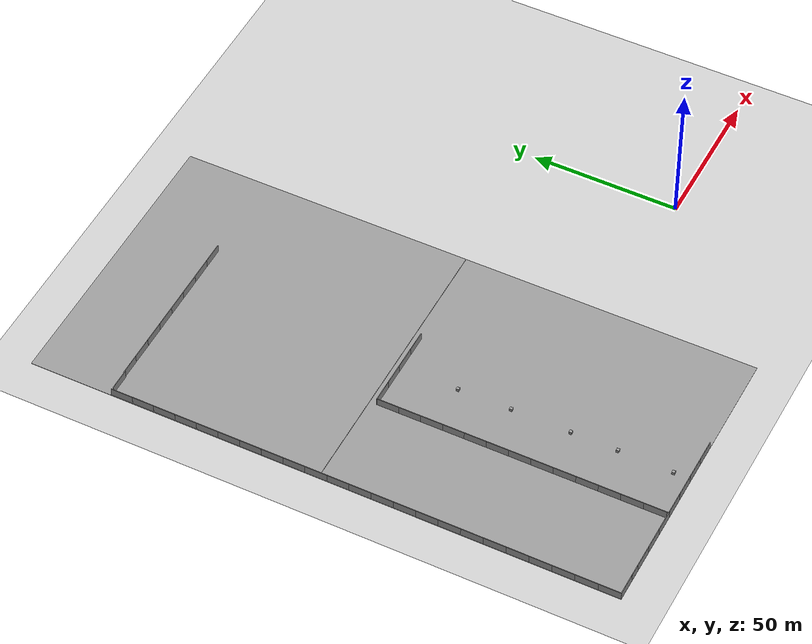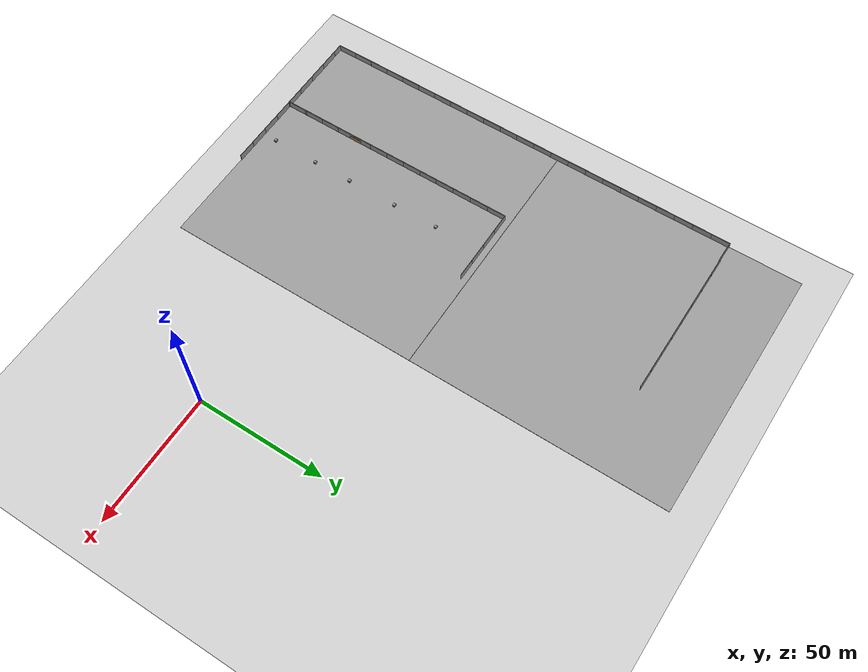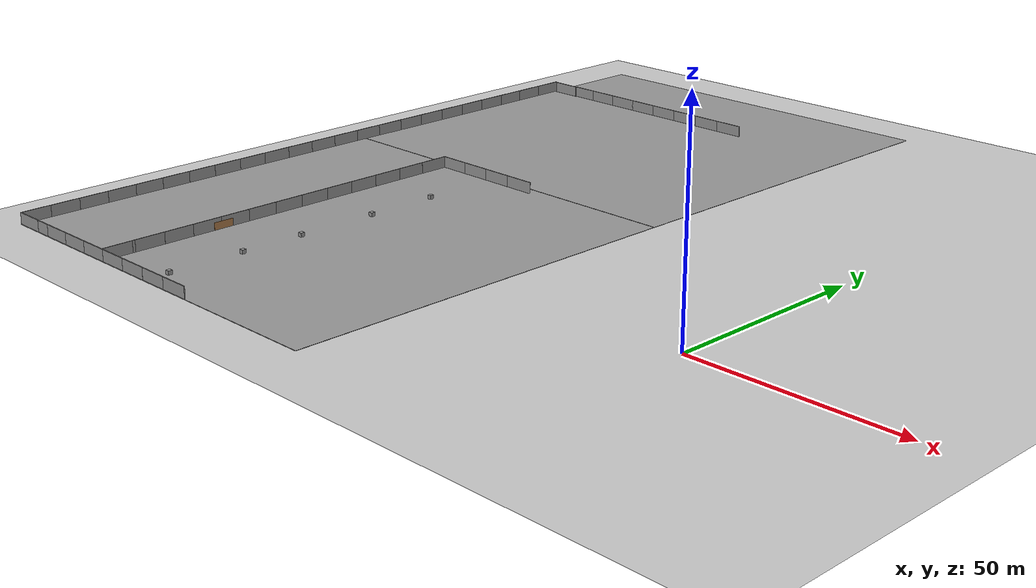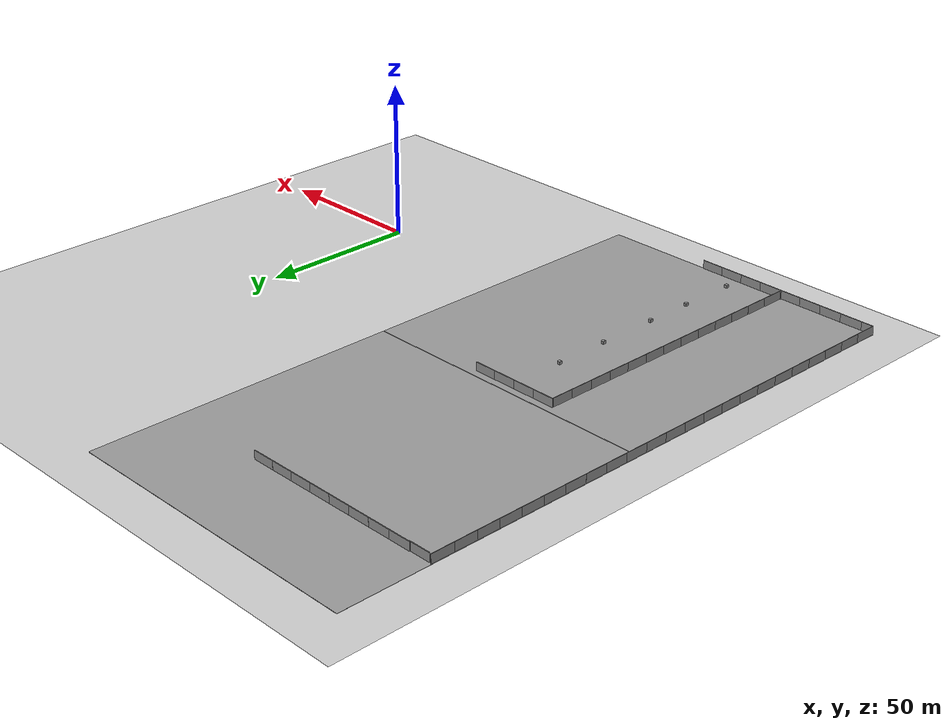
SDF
<sdf version="1.7">
 <world name="default">
  <model name="ground_plane">
   <static>1</static>
   <link name="link">
    <collision name="collision">
     <geometry><plane><normal>0 0 1</normal><size>100 100</size></plane></geometry>
     <surface>
      <contact><collide_bitmask>65535</collide_bitmask></contact>
      <friction><ode><mu>100</mu><mu2>50</mu2></ode></friction>
     </surface>
    </collision>
    <visual name="visual">
     <cast_shadows>0</cast_shadows>
     <geometry><plane><normal>0 0 1</normal><size>100 100</size></plane></geometry>
     <material>
      <script><uri>file://media/materials/scripts/gazebo.material</uri><name>Gazebo/Grey</name></script>
     </material>
    </visual>
   </link>
  </model>
  <model name="ground_plane_1">
   <static>1</static>
   <link name="link">
    <collision name="collision">
     <geometry><plane><normal>0 0 1</normal><size>100 100</size></plane></geometry>
     <surface>
      <contact><collide_bitmask>65535</collide_bitmask></contact>
      <friction><ode><mu>100</mu><mu2>50</mu2></ode></friction>
     </surface>
    </collision>
    <visual name="visual">
     <cast_shadows>0</cast_shadows>
     <geometry><plane><normal>0 0 1</normal><size>100 100</size></plane></geometry>
     <material>
      <script><uri>file://media/materials/scripts/gazebo.material</uri><name>Gazebo/Grey</name></script>
     </material>
    </visual>
   </link>
   <pose>-100.275 100.115 0 0 -0 0</pose>
  </model>
  <model name="ground_plane_2">
   <static>1</static>
   <link name="link">
    <collision name="collision">
     <geometry><plane><normal>0 0 1</normal><size>100 100</size></plane></geometry>
     <surface>
      <contact><collide_bitmask>65535</collide_bitmask></contact>
      <friction><ode><mu>100</mu><mu2>50</mu2></ode></friction>
     </surface>
    </collision>
    <visual name="visual">
     <cast_shadows>0</cast_shadows>
     <geometry><plane><normal>0 0 1</normal><size>100 100</size></plane></geometry>
     <material>
      <script><uri>file://media/materials/scripts/gazebo.material</uri><name>Gazebo/Grey</name></script>
     </material>
    </visual>
   </link>
   <pose>-100.275 -0.034671 0 0 -0 0</pose>
  </model>
  <model name="grey_wall_clone_12">
   <static>1</static>
   <link name="link">
    <pose>0 0 1.4 0 -0 0</pose>
    <collision name="collision"><geometry><box><size>7.5 0.2 2.8</size></box></geometry></collision>
    <visual name="visual">
     <cast_shadows>0</cast_shadows>
     <geometry><box><size>7.5 0.2 2.8</size></box></geometry>
     <material>
      <script>
       <uri>model://grey_wall/materials/scripts</uri>
       <uri>model://grey_wall/materials/textures</uri>
       <name>vrc/grey_wall</name>
      </script>
     </material>
    </visual>
   </link>
   <pose>-89.9316 -49.8737 0 0 -0 0</pose>
  </model>
  <model name="grey_wall_clone_13">
   <static>1</static>
   <link name="link">
    <pose>0 0 1.4 0 -0 0</pose>
    <collision name="collision"><geometry><box><size>7.5 0.2 2.8</size></box></geometry></collision>
    <visual name="visual">
     <cast_shadows>0</cast_shadows>
     <geometry><box><size>7.5 0.2 2.8</size></box></geometry>
     <material>
      <script>
       <uri>model://grey_wall/materials/scripts</uri>
       <uri>model://grey_wall/materials/textures</uri>
       <name>vrc/grey_wall</name>
      </script>
     </material>
    </visual>
   </link>
   <pose>-97.4162 -49.8717 0 0 -0 0</pose>
  </model>
  <model name="grey_wall_clone_14">
   <static>1</static>
   <link name="link">
    <pose>0 0 1.4 0 -0 0</pose>
    <collision name="collision"><geometry><box><size>7.5 0.2 2.8</size></box></geometry></collision>
    <visual name="visual">
     <cast_shadows>0</cast_shadows>
     <geometry><box><size>7.5 0.2 2.8</size></box></geometry>
     <material>
      <script>
       <uri>model://grey_wall/materials/scripts</uri>
       <uri>model://grey_wall/materials/textures</uri>
       <name>vrc/grey_wall</name>
      </script>
     </material>
    </visual>
   </link>
   <pose>-104.907 -49.8747 0 0 -0 0</pose>
  </model>
  <model name="grey_wall_clone_15">
   <static>1</static>
   <link name="link">
    <pose>0 0 1.4 0 -0 0</pose>
    <collision name="collision"><geometry><box><size>7.5 0.2 2.8</size></box></geometry></collision>
    <visual name="visual">
     <cast_shadows>0</cast_shadows>
     <geometry><box><size>7.5 0.2 2.8</size></box></geometry>
     <material>
      <script>
       <uri>model://grey_wall/materials/scripts</uri>
       <uri>model://grey_wall/materials/textures</uri>
       <name>vrc/grey_wall</name>
      </script>
     </material>
    </visual>
   </link>
   <pose>-112.407 -49.8706 0 0 -0 0</pose>
  </model>
  <model name="grey_wall_clone_16">
   <static>1</static>
   <link name="link">
    <pose>0 0 1.4 0 -0 0</pose>
    <collision name="collision"><geometry><box><size>7.5 0.2 2.8</size></box></geometry></collision>
    <visual name="visual">
     <cast_shadows>0</cast_shadows>
     <geometry><box><size>7.5 0.2 2.8</size></box></geometry>
     <material>
      <script>
       <uri>model://grey_wall/materials/scripts</uri>
       <uri>model://grey_wall/materials/textures</uri>
       <name>vrc/grey_wall</name>
      </script>
     </material>
    </visual>
   </link>
   <pose>-119.879 -49.868 0 0 -0 0</pose>
  </model>
  <model name="grey_wall_clone_17">
   <static>1</static>
   <link name="link">
    <pose>0 0 1.4 0 -0 0</pose>
    <collision name="collision"><geometry><box><size>7.5 0.2 2.8</size></box></geometry></collision>
    <visual name="visual">
     <cast_shadows>0</cast_shadows>
     <geometry><box><size>7.5 0.2 2.8</size></box></geometry>
     <material>
      <script>
       <uri>model://grey_wall/materials/scripts</uri>
       <uri>model://grey_wall/materials/textures</uri>
       <name>vrc/grey_wall</name>
      </script>
     </material>
    </visual>
   </link>
   <pose>-127.376 -49.8696 0 0 -0 0</pose>
  </model>
  <model name="grey_wall_clone_18">
   <static>1</static>
   <link name="link">
    <pose>0 0 1.4 0 -0 0</pose>
    <collision name="collision"><geometry><box><size>7.5 0.2 2.8</size></box></geometry></collision>
    <visual name="visual">
     <cast_shadows>0</cast_shadows>
     <geometry><box><size>7.5 0.2 2.8</size></box></geometry>
     <material>
      <script>
       <uri>model://grey_wall/materials/scripts</uri>
       <uri>model://grey_wall/materials/textures</uri>
       <name>vrc/grey_wall</name>
      </script>
     </material>
    </visual>
   </link>
   <pose>-134.865 -49.8693 0 0 -0 0</pose>
  </model>
  <model name="grey_wall_clone_19">
   <static>1</static>
   <link name="link">
    <pose>0 0 1.4 0 -0 0</pose>
    <collision name="collision"><geometry><box><size>7.5 0.2 2.8</size></box></geometry></collision>
    <visual name="visual">
     <cast_shadows>0</cast_shadows>
     <geometry><box><size>7.5 0.2 2.8</size></box></geometry>
     <material>
      <script>
       <uri>model://grey_wall/materials/scripts</uri>
       <uri>model://grey_wall/materials/textures</uri>
       <name>vrc/grey_wall</name>
      </script>
     </material>
    </visual>
   </link>
   <pose>-142.357 -49.8625 0 0 -0 0</pose>
  </model>
  <model name="grey_wall_clone_20">
   <static>1</static>
   <link name="link">
    <pose>0 0 1.4 0 -0 0</pose>
    <collision name="collision"><geometry><box><size>7.5 0.2 2.8</size></box></geometry></collision>
    <visual name="visual">
     <cast_shadows>0</cast_shadows>
     <geometry><box><size>7.5 0.2 2.8</size></box></geometry>
     <material>
      <script>
       <uri>model://grey_wall/materials/scripts</uri>
       <uri>model://grey_wall/materials/textures</uri>
       <name>vrc/grey_wall</name>
      </script>
     </material>
    </visual>
   </link>
   <pose>-146.458 -49.8642 0 0 -0 0</pose>
  </model>
  <model name="grey_wall_clone_21">
   <static>1</static>
   <link name="link">
    <pose>0 0 1.4 0 -0 0</pose>
    <collision name="collision"><geometry><box><size>7.5 0.2 2.8</size></box></geometry></collision>
    <visual name="visual">
     <cast_shadows>0</cast_shadows>
     <geometry><box><size>7.5 0.2 2.8</size></box></geometry>
     <material>
      <script>
       <uri>model://grey_wall/materials/scripts</uri>
       <uri>model://grey_wall/materials/textures</uri>
       <name>vrc/grey_wall</name>
      </script>
     </material>
    </visual>
   </link>
   <pose>-150.109 -46.212 0 0 -0 1.57</pose>
  </model>
  <model name="grey_wall_clone_21_clone">
   <static>1</static>
   <link name="link">
    <pose>0 0 1.4 0 -0 0</pose>
    <collision name="collision"><geometry><box><size>7.5 0.2 2.8</size></box></geometry></collision>
    <visual name="visual">
     <cast_shadows>0</cast_shadows>
     <geometry><box><size>7.5 0.2 2.8</size></box></geometry>
     <material>
      <script>
       <uri>model://grey_wall/materials/scripts</uri>
       <uri>model://grey_wall/materials/textures</uri>
       <name>vrc/grey_wall</name>
      </script>
     </material>
    </visual>
   </link>
   <pose>-150.111 -38.7432 0 0 -0 1.57</pose>
  </model>
  <model name="grey_wall_clone_21_clone_0">
   <static>1</static>
   <link name="link">
    <pose>0 0 1.4 0 -0 0</pose>
    <collision name="collision"><geometry><box><size>7.5 0.2 2.8</size></box></geometry></collision>
    <visual name="visual">
     <cast_shadows>0</cast_shadows>
     <geometry><box><size>7.5 0.2 2.8</size></box></geometry>
     <material>
      <script>
       <uri>model://grey_wall/materials/scripts</uri>
       <uri>model://grey_wall/materials/textures</uri>
       <name>vrc/grey_wall</name>
      </script>
     </material>
    </visual>
   </link>
   <pose>-150.104 -31.2804 0 0 -0 1.57</pose>
  </model>
  <model name="grey_wall_clone_21_clone_1">
   <static>1</static>
   <link name="link">
    <pose>0 0 1.4 0 -0 0</pose>
    <collision name="collision"><geometry><box><size>7.5 0.2 2.8</size></box></geometry></collision>
    <visual name="visual">
     <cast_shadows>0</cast_shadows>
     <geometry><box><size>7.5 0.2 2.8</size></box></geometry>
     <material>
      <script>
       <uri>model://grey_wall/materials/scripts</uri>
       <uri>model://grey_wall/materials/textures</uri>
       <name>vrc/grey_wall</name>
      </script>
     </material>
    </visual>
   </link>
   <pose>-150.096 -23.8165 0 0 -0 1.57</pose>
  </model>
  <model name="grey_wall_clone_21_clone_2">
   <static>1</static>
   <link name="link">
    <pose>0 0 1.4 0 -0 0</pose>
    <collision name="collision"><geometry><box><size>7.5 0.2 2.8</size></box></geometry></collision>
    <visual name="visual">
     <cast_shadows>0</cast_shadows>
     <geometry><box><size>7.5 0.2 2.8</size></box></geometry>
     <material>
      <script>
       <uri>model://grey_wall/materials/scripts</uri>
       <uri>model://grey_wall/materials/textures</uri>
       <name>vrc/grey_wall</name>
      </script>
     </material>
    </visual>
   </link>
   <pose>-150.091 -16.3673 0 0 -0 1.57</pose>
  </model>
  <model name="grey_wall_clone_21_clone_3">
   <static>1</static>
   <link name="link">
    <pose>0 0 1.4 0 -0 0</pose>
    <collision name="collision"><geometry><box><size>7.5 0.2 2.8</size></box></geometry></collision>
    <visual name="visual">
     <cast_shadows>0</cast_shadows>
     <geometry><box><size>7.5 0.2 2.8</size></box></geometry>
     <material>
      <script>
       <uri>model://grey_wall/materials/scripts</uri>
       <uri>model://grey_wall/materials/textures</uri>
       <name>vrc/grey_wall</name>
      </script>
     </material>
    </visual>
   </link>
   <pose>-150.086 -8.8736 0 0 -0 1.57</pose>
  </model>
  <model name="grey_wall_clone_21_clone_4">
   <static>1</static>
   <link name="link">
    <pose>0 0 1.4 0 -0 0</pose>
    <collision name="collision"><geometry><box><size>7.5 0.2 2.8</size></box></geometry></collision>
    <visual name="visual">
     <cast_shadows>0</cast_shadows>
     <geometry><box><size>7.5 0.2 2.8</size></box></geometry>
     <material>
      <script>
       <uri>model://grey_wall/materials/scripts</uri>
       <uri>model://grey_wall/materials/textures</uri>
       <name>vrc/grey_wall</name>
      </script>
     </material>
    </visual>
   </link>
   <pose>-150.086 -1.38788 0 0 -0 1.57</pose>
  </model>
  <model name="grey_wall_clone_21_clone_5">
   <static>1</static>
   <link name="link">
    <pose>0 0 1.4 0 -0 0</pose>
    <collision name="collision"><geometry><box><size>7.5 0.2 2.8</size></box></geometry></collision>
    <visual name="visual">
     <cast_shadows>0</cast_shadows>
     <geometry><box><size>7.5 0.2 2.8</size></box></geometry>
     <material>
      <script>
       <uri>model://grey_wall/materials/scripts</uri>
       <uri>model://grey_wall/materials/textures</uri>
       <name>vrc/grey_wall</name>
      </script>
     </material>
    </visual>
   </link>
   <pose>-150.077 6.08061 0 0 -0 1.57</pose>
  </model>
  <model name="grey_wall_clone_21_clone_6">
   <static>1</static>
   <link name="link">
    <pose>0 0 1.4 0 -0 0</pose>
    <collision name="collision"><geometry><box><size>7.5 0.2 2.8</size></box></geometry></collision>
    <visual name="visual">
     <cast_shadows>0</cast_shadows>
     <geometry><box><size>7.5 0.2 2.8</size></box></geometry>
     <material>
      <script>
       <uri>model://grey_wall/materials/scripts</uri>
       <uri>model://grey_wall/materials/textures</uri>
       <name>vrc/grey_wall</name>
      </script>
     </material>
    </visual>
   </link>
   <pose>-150.074 13.5681 0 0 -0 1.57</pose>
  </model>
  <model name="grey_wall_clone_21_clone_7">
   <static>1</static>
   <link name="link">
    <pose>0 0 1.4 0 -0 0</pose>
    <collision name="collision"><geometry><box><size>7.5 0.2 2.8</size></box></geometry></collision>
    <visual name="visual">
     <cast_shadows>0</cast_shadows>
     <geometry><box><size>7.5 0.2 2.8</size></box></geometry>
     <material>
      <script>
       <uri>model://grey_wall/materials/scripts</uri>
       <uri>model://grey_wall/materials/textures</uri>
       <name>vrc/grey_wall</name>
      </script>
     </material>
    </visual>
   </link>
   <pose>-150.072 20.9835 0 0 -0 1.57</pose>
  </model>
  <model name="grey_wall_clone_21_clone_8">
   <static>1</static>
   <link name="link">
    <pose>0 0 1.4 0 -0 0</pose>
    <collision name="collision"><geometry><box><size>7.5 0.2 2.8</size></box></geometry></collision>
    <visual name="visual">
     <cast_shadows>0</cast_shadows>
     <geometry><box><size>7.5 0.2 2.8</size></box></geometry>
     <material>
      <script>
       <uri>model://grey_wall/materials/scripts</uri>
       <uri>model://grey_wall/materials/textures</uri>
       <name>vrc/grey_wall</name>
      </script>
     </material>
    </visual>
   </link>
   <pose>-150.068 28.4195 0 0 -0 1.57</pose>
  </model>
  <model name="grey_wall_clone_21_clone_9">
   <static>1</static>
   <link name="link">
    <pose>0 0 1.4 0 -0 0</pose>
    <collision name="collision"><geometry><box><size>7.5 0.2 2.8</size></box></geometry></collision>
    <visual name="visual">
     <cast_shadows>0</cast_shadows>
     <geometry><box><size>7.5 0.2 2.8</size></box></geometry>
     <material>
      <script>
       <uri>model://grey_wall/materials/scripts</uri>
       <uri>model://grey_wall/materials/textures</uri>
       <name>vrc/grey_wall</name>
      </script>
     </material>
    </visual>
   </link>
   <pose>-150.068 35.8569 0 0 -0 1.57</pose>
  </model>
  <model name="grey_wall_clone_21_clone_10">
   <static>1</static>
   <link name="link">
    <pose>0 0 1.4 0 -0 0</pose>
    <collision name="collision"><geometry><box><size>7.5 0.2 2.8</size></box></geometry></collision>
    <visual name="visual">
     <cast_shadows>0</cast_shadows>
     <geometry><box><size>7.5 0.2 2.8</size></box></geometry>
     <material>
      <script>
       <uri>model://grey_wall/materials/scripts</uri>
       <uri>model://grey_wall/materials/textures</uri>
       <name>vrc/grey_wall</name>
      </script>
     </material>
    </visual>
   </link>
   <pose>-150.061 43.3516 0 0 -0 1.57</pose>
  </model>
  <model name="grey_wall_clone_21_clone_11">
   <static>1</static>
   <link name="link">
    <pose>0 0 1.4 0 -0 0</pose>
    <collision name="collision"><geometry><box><size>7.5 0.2 2.8</size></box></geometry></collision>
    <visual name="visual">
     <cast_shadows>0</cast_shadows>
     <geometry><box><size>7.5 0.2 2.8</size></box></geometry>
     <material>
      <script>
       <uri>model://grey_wall/materials/scripts</uri>
       <uri>model://grey_wall/materials/textures</uri>
       <name>vrc/grey_wall</name>
      </script>
     </material>
    </visual>
   </link>
   <pose>-150.056 50.821 0 0 -0 1.57</pose>
  </model>
  <model name="grey_wall_clone_21_clone_12">
   <static>1</static>
   <link name="link">
    <pose>0 0 1.4 0 -0 0</pose>
    <collision name="collision"><geometry><box><size>7.5 0.2 2.8</size></box></geometry></collision>
    <visual name="visual">
     <cast_shadows>0</cast_shadows>
     <geometry><box><size>7.5 0.2 2.8</size></box></geometry>
     <material>
      <script>
       <uri>model://grey_wall/materials/scripts</uri>
       <uri>model://grey_wall/materials/textures</uri>
       <name>vrc/grey_wall</name>
      </script>
     </material>
    </visual>
   </link>
   <pose>-150.051 58.306 0 0 -0 1.57</pose>
  </model>
  <model name="grey_wall_clone_21_clone_13">
   <static>1</static>
   <link name="link">
    <pose>0 0 1.4 0 -0 0</pose>
    <collision name="collision"><geometry><box><size>7.5 0.2 2.8</size></box></geometry></collision>
    <visual name="visual">
     <cast_shadows>0</cast_shadows>
     <geometry><box><size>7.5 0.2 2.8</size></box></geometry>
     <material>
      <script>
       <uri>model://grey_wall/materials/scripts</uri>
       <uri>model://grey_wall/materials/textures</uri>
       <name>vrc/grey_wall</name>
      </script>
     </material>
    </visual>
   </link>
   <pose>-150.053 65.7294 0 0 -0 1.57</pose>
  </model>
  <model name="grey_wall_clone_21_clone_14">
   <static>1</static>
   <link name="link">
    <pose>0 0 1.4 0 -0 0</pose>
    <collision name="collision"><geometry><box><size>7.5 0.2 2.8</size></box></geometry></collision>
    <visual name="visual">
     <cast_shadows>0</cast_shadows>
     <geometry><box><size>7.5 0.2 2.8</size></box></geometry>
     <material>
      <script>
       <uri>model://grey_wall/materials/scripts</uri>
       <uri>model://grey_wall/materials/textures</uri>
       <name>vrc/grey_wall</name>
      </script>
     </material>
    </visual>
   </link>
   <pose>-150.035 73.1423 0 0 -0 1.57</pose>
  </model>
  <model name="grey_wall_clone_21_clone_15">
   <static>1</static>
   <link name="link">
    <pose>0 0 1.4 0 -0 0</pose>
    <collision name="collision"><geometry><box><size>7.5 0.2 2.8</size></box></geometry></collision>
    <visual name="visual">
     <cast_shadows>0</cast_shadows>
     <geometry><box><size>7.5 0.2 2.8</size></box></geometry>
     <material>
      <script>
       <uri>model://grey_wall/materials/scripts</uri>
       <uri>model://grey_wall/materials/textures</uri>
       <name>vrc/grey_wall</name>
      </script>
     </material>
    </visual>
   </link>
   <pose>-150.036 80.6208 0 0 -0 1.57</pose>
  </model>
  <model name="grey_wall_clone_21_clone_16">
   <static>1</static>
   <link name="link">
    <pose>0 0 1.4 0 -0 0</pose>
    <collision name="collision"><geometry><box><size>7.5 0.2 2.8</size></box></geometry></collision>
    <visual name="visual">
     <cast_shadows>0</cast_shadows>
     <geometry><box><size>7.5 0.2 2.8</size></box></geometry>
     <material>
      <script>
       <uri>model://grey_wall/materials/scripts</uri>
       <uri>model://grey_wall/materials/textures</uri>
       <name>vrc/grey_wall</name>
      </script>
     </material>
    </visual>
   </link>
   <pose>-150.032 88.0725 0 0 -0 1.57</pose>
  </model>
  <model name="grey_wall_clone_21_clone_17">
   <static>1</static>
   <link name="link">
    <pose>0 0 1.4 0 -0 0</pose>
    <collision name="collision"><geometry><box><size>7.5 0.2 2.8</size></box></geometry></collision>
    <visual name="visual">
     <cast_shadows>0</cast_shadows>
     <geometry><box><size>7.5 0.2 2.8</size></box></geometry>
     <material>
      <script>
       <uri>model://grey_wall/materials/scripts</uri>
       <uri>model://grey_wall/materials/textures</uri>
       <name>vrc/grey_wall</name>
      </script>
     </material>
    </visual>
   </link>
   <pose>-150.026 95.544 0 0 -0 1.57</pose>
  </model>
  <model name="grey_wall_clone_21_clone_18">
   <static>1</static>
   <link name="link">
    <pose>0 0 1.4 0 -0 0</pose>
    <collision name="collision"><geometry><box><size>7.5 0.2 2.8</size></box></geometry></collision>
    <visual name="visual">
     <cast_shadows>0</cast_shadows>
     <geometry><box><size>7.5 0.2 2.8</size></box></geometry>
     <material>
      <script>
       <uri>model://grey_wall/materials/scripts</uri>
       <uri>model://grey_wall/materials/textures</uri>
       <name>vrc/grey_wall</name>
      </script>
     </material>
    </visual>
   </link>
   <pose>-150.015 103.006 0 0 -0 1.57</pose>
  </model>
  <model name="grey_wall_clone_21_clone_19">
   <static>1</static>
   <link name="link">
    <pose>0 0 1.4 0 -0 0</pose>
    <collision name="collision"><geometry><box><size>7.5 0.2 2.8</size></box></geometry></collision>
    <visual name="visual">
     <cast_shadows>0</cast_shadows>
     <geometry><box><size>7.5 0.2 2.8</size></box></geometry>
     <material>
      <script>
       <uri>model://grey_wall/materials/scripts</uri>
       <uri>model://grey_wall/materials/textures</uri>
       <name>vrc/grey_wall</name>
      </script>
     </material>
    </visual>
   </link>
   <pose>-150.003 110.449 0 0 -0 1.57</pose>
  </model>
  <model name="grey_wall_clone_21_clone_20">
   <static>1</static>
   <link name="link">
    <pose>0 0 1.4 0 -0 0</pose>
    <collision name="collision"><geometry><box><size>7.5 0.2 2.8</size></box></geometry></collision>
    <visual name="visual">
     <cast_shadows>0</cast_shadows>
     <geometry><box><size>7.5 0.2 2.8</size></box></geometry>
     <material>
      <script>
       <uri>model://grey_wall/materials/scripts</uri>
       <uri>model://grey_wall/materials/textures</uri>
       <name>vrc/grey_wall</name>
      </script>
     </material>
    </visual>
   </link>
   <pose>-150.007 117.904 0 0 -0 1.57</pose>
  </model>
  <model name="grey_wall_clone_21_clone_21">
   <static>1</static>
   <link name="link">
    <pose>0 0 1.4 0 -0 0</pose>
    <collision name="collision"><geometry><box><size>7.5 0.2 2.8</size></box></geometry></collision>
    <visual name="visual">
     <cast_shadows>0</cast_shadows>
     <geometry><box><size>7.5 0.2 2.8</size></box></geometry>
     <material>
      <script>
       <uri>model://grey_wall/materials/scripts</uri>
       <uri>model://grey_wall/materials/textures</uri>
       <name>vrc/grey_wall</name>
      </script>
     </material>
    </visual>
   </link>
   <pose>-145.677 121.344 0 0 -0 0</pose>
  </model>
  <model name="grey_wall_clone_21_clone_21_clone">
   <static>1</static>
   <link name="link">
    <pose>0 0 1.4 0 -0 0</pose>
    <collision name="collision"><geometry><box><size>7.5 0.2 2.8</size></box></geometry></collision>
    <visual name="visual">
     <cast_shadows>0</cast_shadows>
     <geometry><box><size>7.5 0.2 2.8</size></box></geometry>
     <material>
      <script>
       <uri>model://grey_wall/materials/scripts</uri>
       <uri>model://grey_wall/materials/textures</uri>
       <name>vrc/grey_wall</name>
      </script>
     </material>
    </visual>
   </link>
   <pose>-138.965 121.554 0 0 -0 0</pose>
  </model>
  <model name="grey_wall_clone_21_clone_21_clone_0">
   <static>1</static>
   <link name="link">
    <pose>0 0 1.4 0 -0 0</pose>
    <collision name="collision"><geometry><box><size>7.5 0.2 2.8</size></box></geometry></collision>
    <visual name="visual">
     <cast_shadows>0</cast_shadows>
     <geometry><box><size>7.5 0.2 2.8</size></box></geometry>
     <material>
      <script>
       <uri>model://grey_wall/materials/scripts</uri>
       <uri>model://grey_wall/materials/textures</uri>
       <name>vrc/grey_wall</name>
      </script>
     </material>
    </visual>
   </link>
   <pose>-131.474 121.559 0 0 -0 0</pose>
  </model>
  <model name="grey_wall_clone_21_clone_21_clone_1">
   <static>1</static>
   <link name="link">
    <pose>0 0 1.4 0 -0 0</pose>
    <collision name="collision"><geometry><box><size>7.5 0.2 2.8</size></box></geometry></collision>
    <visual name="visual">
     <cast_shadows>0</cast_shadows>
     <geometry><box><size>7.5 0.2 2.8</size></box></geometry>
     <material>
      <script>
       <uri>model://grey_wall/materials/scripts</uri>
       <uri>model://grey_wall/materials/textures</uri>
       <name>vrc/grey_wall</name>
      </script>
     </material>
    </visual>
   </link>
   <pose>-124.004 121.564 0 0 -0 0</pose>
  </model>
  <model name="grey_wall_clone_21_clone_21_clone_2">
   <static>1</static>
   <link name="link">
    <pose>0 0 1.4 0 -0 0</pose>
    <collision name="collision"><geometry><box><size>7.5 0.2 2.8</size></box></geometry></collision>
    <visual name="visual">
     <cast_shadows>0</cast_shadows>
     <geometry><box><size>7.5 0.2 2.8</size></box></geometry>
     <material>
      <script>
       <uri>model://grey_wall/materials/scripts</uri>
       <uri>model://grey_wall/materials/textures</uri>
       <name>vrc/grey_wall</name>
      </script>
     </material>
    </visual>
   </link>
   <pose>-116.614 121.564 0 0 -0 0</pose>
  </model>
  <model name="grey_wall_clone_21_clone_21_clone_3">
   <static>1</static>
   <link name="link">
    <pose>0 0 1.4 0 -0 0</pose>
    <collision name="collision"><geometry><box><size>7.5 0.2 2.8</size></box></geometry></collision>
    <visual name="visual">
     <cast_shadows>0</cast_shadows>
     <geometry><box><size>7.5 0.2 2.8</size></box></geometry>
     <material>
      <script>
       <uri>model://grey_wall/materials/scripts</uri>
       <uri>model://grey_wall/materials/textures</uri>
       <name>vrc/grey_wall</name>
      </script>
     </material>
    </visual>
   </link>
   <pose>-109.14 121.563 0 0 -0 0</pose>
  </model>
  <model name="grey_wall_clone_21_clone_21_clone_4">
   <static>1</static>
   <link name="link">
    <pose>0 0 1.4 0 -0 0</pose>
    <collision name="collision"><geometry><box><size>7.5 0.2 2.8</size></box></geometry></collision>
    <visual name="visual">
     <cast_shadows>0</cast_shadows>
     <geometry><box><size>7.5 0.2 2.8</size></box></geometry>
     <material>
      <script>
       <uri>model://grey_wall/materials/scripts</uri>
       <uri>model://grey_wall/materials/textures</uri>
       <name>vrc/grey_wall</name>
      </script>
     </material>
    </visual>
   </link>
   <pose>-101.642 121.569 0 0 -0 0</pose>
  </model>
  <model name="grey_wall_clone_21_clone_21_clone_5">
   <static>1</static>
   <link name="link">
    <pose>0 0 1.4 0 -0 0</pose>
    <collision name="collision"><geometry><box><size>7.5 0.2 2.8</size></box></geometry></collision>
    <visual name="visual">
     <cast_shadows>0</cast_shadows>
     <geometry><box><size>7.5 0.2 2.8</size></box></geometry>
     <material>
      <script>
       <uri>model://grey_wall/materials/scripts</uri>
       <uri>model://grey_wall/materials/textures</uri>
       <name>vrc/grey_wall</name>
      </script>
     </material>
    </visual>
   </link>
   <pose>-94.2065 121.581 0 0 -0 0</pose>
  </model>
  <model name="grey_wall_clone_21_clone_21_clone_6">
   <static>1</static>
   <link name="link">
    <pose>0 0 1.4 0 -0 0</pose>
    <collision name="collision"><geometry><box><size>7.5 0.2 2.8</size></box></geometry></collision>
    <visual name="visual">
     <cast_shadows>0</cast_shadows>
     <geometry><box><size>7.5 0.2 2.8</size></box></geometry>
     <material>
      <script>
       <uri>model://grey_wall/materials/scripts</uri>
       <uri>model://grey_wall/materials/textures</uri>
       <name>vrc/grey_wall</name>
      </script>
     </material>
    </visual>
   </link>
   <pose>-86.7332 121.59 0 0 -0 0</pose>
  </model>
  <model name="unit_box_clone_0">
   <pose>-100 -10.0293 0.499995 -5e-06 4e-06 -2e-06</pose>
   <link name="link">
    <inertial>
     <mass>1</mass>
     <inertia>
      <ixx>0.166667</ixx>
      <ixy>0</ixy>
      <ixz>0</ixz>
      <iyy>0.166667</iyy>
      <iyz>0</iyz>
      <izz>0.166667</izz>
     </inertia>
    </inertial>
    <collision name="collision"><geometry><box><size>1 1 1</size></box></geometry></collision>
    <visual name="visual">
     <geometry><box><size>1 1 1</size></box></geometry>
     <material>
      <script><name>Gazebo/Grey</name><uri>file://media/materials/scripts/gazebo.material</uri></script>
     </material>
    </visual>
   </link>
  </model>
  <model name="unit_box_clone_5">
   <pose>-100 10.0407 0.499997 0 5e-06 0</pose>
   <link name="link">
    <inertial>
     <mass>1</mass>
     <inertia>
      <ixx>0.166667</ixx>
      <ixy>0</ixy>
      <ixz>0</ixz>
      <iyy>0.166667</iyy>
      <iyz>0</iyz>
      <izz>0.166667</izz>
     </inertia>
    </inertial>
    <collision name="collision"><geometry><box><size>1 1 1</size></box></geometry></collision>
    <visual name="visual">
     <geometry><box><size>1 1 1</size></box></geometry>
     <material>
      <script><name>Gazebo/Grey</name><uri>file://media/materials/scripts/gazebo.material</uri></script>
     </material>
    </visual>
   </link>
  </model>
  <model name="unit_box_clone_10_clone">
   <pose>-100 -25.7514 0.499995 -5e-06 -4e-06 1.2e-05</pose>
   <link name="link">
    <inertial>
     <mass>1</mass>
     <inertia>
      <ixx>0.166667</ixx>
      <ixy>0</ixy>
      <ixz>0</ixz>
      <iyy>0.166667</iyy>
      <iyz>0</iyz>
      <izz>0.166667</izz>
     </inertia>
    </inertial>
    <collision name="collision"><geometry><box><size>1 1 1</size></box></geometry></collision>
    <visual name="visual">
     <geometry><box><size>1 1 1</size></box></geometry>
     <material>
      <script><name>Gazebo/Grey</name><uri>file://media/materials/scripts/gazebo.material</uri></script>
     </material>
    </visual>
   </link>
  </model>
  <model name="grey_wall_clone_21_clone_21_clone_2_clone_clone_11">
   <static>1</static>
   <link name="link">
    <pose>0 0 1.4 0 -0 0</pose>
    <collision name="collision"><geometry><box><size>7.5 0.2 2.8</size></box></geometry></collision>
    <visual name="visual">
     <cast_shadows>0</cast_shadows>
     <geometry><box><size>7.5 0.2 2.8</size></box></geometry>
     <material>
      <script>
       <uri>model://grey_wall/materials/scripts</uri>
       <uri>model://grey_wall/materials/textures</uri>
       <name>vrc/grey_wall</name>
      </script>
     </material>
    </visual>
   </link>
   <pose>-90.5358 47.5041 0 0 -0 0</pose>
  </model>
  <model name="grey_wall_clone_21_clone_21_clone_2_clone_clone_12">
   <static>1</static>
   <link name="link">
    <pose>0 0 1.4 0 -0 0</pose>
    <collision name="collision"><geometry><box><size>7.5 0.2 2.8</size></box></geometry></collision>
    <visual name="visual">
     <cast_shadows>0</cast_shadows>
     <geometry><box><size>7.5 0.2 2.8</size></box></geometry>
     <material>
      <script>
       <uri>model://grey_wall/materials/scripts</uri>
       <uri>model://grey_wall/materials/textures</uri>
       <name>vrc/grey_wall</name>
      </script>
     </material>
    </visual>
   </link>
   <pose>-98.0111 47.5089 0 0 -0 0</pose>
  </model>
  <model name="grey_wall_clone_21_clone_21_clone_2_clone_clone_13">
   <static>1</static>
   <link name="link">
    <pose>0 0 1.4 0 -0 0</pose>
    <collision name="collision"><geometry><box><size>7.5 0.2 2.8</size></box></geometry></collision>
    <visual name="visual">
     <cast_shadows>0</cast_shadows>
     <geometry><box><size>7.5 0.2 2.8</size></box></geometry>
     <material>
      <script>
       <uri>model://grey_wall/materials/scripts</uri>
       <uri>model://grey_wall/materials/textures</uri>
       <name>vrc/grey_wall</name>
      </script>
     </material>
    </visual>
   </link>
   <pose>-105.478 47.5101 0 0 -0 0</pose>
  </model>
  <model name="grey_wall_clone_21_clone_21_clone_2_clone_clone_14">
   <static>1</static>
   <link name="link">
    <pose>0 0 1.4 0 -0 0</pose>
    <collision name="collision"><geometry><box><size>7.5 0.2 2.8</size></box></geometry></collision>
    <visual name="visual">
     <cast_shadows>0</cast_shadows>
     <geometry><box><size>7.5 0.2 2.8</size></box></geometry>
     <material>
      <script>
       <uri>model://grey_wall/materials/scripts</uri>
       <uri>model://grey_wall/materials/textures</uri>
       <name>vrc/grey_wall</name>
      </script>
     </material>
    </visual>
   </link>
   <pose>-112.931 47.503 0 0 -0 0</pose>
  </model>
  <model name="grey_wall_clone_21_clone_9_clone">
   <static>1</static>
   <link name="link">
    <pose>0 0 1.4 0 -0 0</pose>
    <collision name="collision"><geometry><box><size>7.5 0.2 2.8</size></box></geometry></collision>
    <visual name="visual">
     <cast_shadows>0</cast_shadows>
     <geometry><box><size>7.5 0.2 2.8</size></box></geometry>
     <material>
      <script>
       <uri>model://grey_wall/materials/scripts</uri>
       <uri>model://grey_wall/materials/textures</uri>
       <name>vrc/grey_wall</name>
      </script>
     </material>
    </visual>
   </link>
   <pose>-116.568 43.7021 0 0 -0 1.57</pose>
  </model>
  <model name="grey_wall_clone_21_clone_9_clone_0">
   <static>1</static>
   <link name="link">
    <pose>0 0 1.4 0 -0 0</pose>
    <collision name="collision"><geometry><box><size>7.5 0.2 2.8</size></box></geometry></collision>
    <visual name="visual">
     <cast_shadows>0</cast_shadows>
     <geometry><box><size>7.5 0.2 2.8</size></box></geometry>
     <material>
      <script>
       <uri>model://grey_wall/materials/scripts</uri>
       <uri>model://grey_wall/materials/textures</uri>
       <name>vrc/grey_wall</name>
      </script>
     </material>
    </visual>
   </link>
   <pose>-116.577 36.3503 0 0 -0 1.57</pose>
  </model>
  <model name="grey_wall_clone_21_clone_9_clone_1">
   <static>1</static>
   <link name="link">
    <pose>0 0 1.4 0 -0 0</pose>
    <collision name="collision"><geometry><box><size>7.5 0.2 2.8</size></box></geometry></collision>
    <visual name="visual">
     <cast_shadows>0</cast_shadows>
     <geometry><box><size>7.5 0.2 2.8</size></box></geometry>
     <material>
      <script>
       <uri>model://grey_wall/materials/scripts</uri>
       <uri>model://grey_wall/materials/textures</uri>
       <name>vrc/grey_wall</name>
      </script>
     </material>
    </visual>
   </link>
   <pose>-116.569 28.8575 0 0 -0 1.57</pose>
  </model>
  <model name="grey_wall_clone_21_clone_9_clone_2">
   <static>1</static>
   <link name="link">
    <pose>0 0 1.4 0 -0 0</pose>
    <collision name="collision"><geometry><box><size>7.5 0.2 2.8</size></box></geometry></collision>
    <visual name="visual">
     <cast_shadows>0</cast_shadows>
     <geometry><box><size>7.5 0.2 2.8</size></box></geometry>
     <material>
      <script>
       <uri>model://grey_wall/materials/scripts</uri>
       <uri>model://grey_wall/materials/textures</uri>
       <name>vrc/grey_wall</name>
      </script>
     </material>
    </visual>
   </link>
   <pose>-116.564 21.3824 0 0 -0 1.57</pose>
  </model>
  <model name="grey_wall_clone_21_clone_9_clone_3">
   <static>1</static>
   <link name="link">
    <pose>0 0 1.4 0 -0 0</pose>
    <collision name="collision"><geometry><box><size>7.5 0.2 2.8</size></box></geometry></collision>
    <visual name="visual">
     <cast_shadows>0</cast_shadows>
     <geometry><box><size>7.5 0.2 2.8</size></box></geometry>
     <material>
      <script>
       <uri>model://grey_wall/materials/scripts</uri>
       <uri>model://grey_wall/materials/textures</uri>
       <name>vrc/grey_wall</name>
      </script>
     </material>
    </visual>
   </link>
   <pose>-116.573 14.0693 0 0 -0 1.57</pose>
  </model>
  <model name="grey_wall_clone_21_clone_9_clone_4">
   <static>1</static>
   <link name="link">
    <pose>0 0 1.4 0 -0 0</pose>
    <collision name="collision"><geometry><box><size>7.5 0.2 2.8</size></box></geometry></collision>
    <visual name="visual">
     <cast_shadows>0</cast_shadows>
     <geometry><box><size>7.5 0.2 2.8</size></box></geometry>
     <material>
      <script>
       <uri>model://grey_wall/materials/scripts</uri>
       <uri>model://grey_wall/materials/textures</uri>
       <name>vrc/grey_wall</name>
      </script>
     </material>
    </visual>
   </link>
   <pose>-116.568 6.63952 0 0 -0 1.57</pose>
  </model>
  <model name="grey_wall_clone_21_clone_9_clone_5">
   <static>1</static>
   <link name="link">
    <pose>0 0 1.4 0 -0 0</pose>
    <collision name="collision"><geometry><box><size>7.5 0.2 2.8</size></box></geometry></collision>
    <visual name="visual">
     <cast_shadows>0</cast_shadows>
     <geometry><box><size>7.5 0.2 2.8</size></box></geometry>
     <material>
      <script>
       <uri>model://grey_wall/materials/scripts</uri>
       <uri>model://grey_wall/materials/textures</uri>
       <name>vrc/grey_wall</name>
      </script>
     </material>
    </visual>
   </link>
   <pose>-116.565 -0.775761 0 0 -0 1.57</pose>
  </model>
  <model name="grey_wall_clone_21_clone_9_clone_6">
   <static>1</static>
   <link name="link">
    <pose>0 0 1.4 0 -0 0</pose>
    <collision name="collision"><geometry><box><size>7.5 0.2 2.8</size></box></geometry></collision>
    <visual name="visual">
     <cast_shadows>0</cast_shadows>
     <geometry><box><size>7.5 0.2 2.8</size></box></geometry>
     <material>
      <script>
       <uri>model://grey_wall/materials/scripts</uri>
       <uri>model://grey_wall/materials/textures</uri>
       <name>vrc/grey_wall</name>
      </script>
     </material>
    </visual>
   </link>
   <pose>-116.578 -8.22941 0 0 -0 1.57</pose>
  </model>
  <model name="grey_wall_clone_21_clone_9_clone_7">
   <static>1</static>
   <link name="link">
    <pose>0 0 1.4 0 -0 0</pose>
    <collision name="collision"><geometry><box><size>7.5 0.2 2.8</size></box></geometry></collision>
    <visual name="visual">
     <cast_shadows>0</cast_shadows>
     <geometry><box><size>7.5 0.2 2.8</size></box></geometry>
     <material>
      <script>
       <uri>model://grey_wall/materials/scripts</uri>
       <uri>model://grey_wall/materials/textures</uri>
       <name>vrc/grey_wall</name>
      </script>
     </material>
    </visual>
   </link>
   <pose>-116.572 -15.7283 0 0 -0 1.57</pose>
  </model>
  <model name="grey_wall_clone_21_clone_9_clone_8">
   <static>1</static>
   <link name="link">
    <pose>0 0 1.4 0 -0 0</pose>
    <collision name="collision"><geometry><box><size>7.5 0.2 2.8</size></box></geometry></collision>
    <visual name="visual">
     <cast_shadows>0</cast_shadows>
     <geometry><box><size>7.5 0.2 2.8</size></box></geometry>
     <material>
      <script>
       <uri>model://grey_wall/materials/scripts</uri>
       <uri>model://grey_wall/materials/textures</uri>
       <name>vrc/grey_wall</name>
      </script>
     </material>
    </visual>
   </link>
   <pose>-116.578 -23.1943 0 0 -0 1.57</pose>
  </model>
  <model name="grey_wall_clone_21_clone_9_clone_9">
   <static>1</static>
   <link name="link">
    <pose>0 0 1.4 0 -0 0</pose>
    <collision name="collision"><geometry><box><size>7.5 0.2 2.8</size></box></geometry></collision>
    <visual name="visual">
     <cast_shadows>0</cast_shadows>
     <geometry><box><size>7.5 0.2 2.8</size></box></geometry>
     <material>
      <script>
       <uri>model://grey_wall/materials/scripts</uri>
       <uri>model://grey_wall/materials/textures</uri>
       <name>vrc/grey_wall</name>
      </script>
     </material>
    </visual>
   </link>
   <pose>-116.592 -30.5813 0 0 -0 1.57</pose>
  </model>
  <model name="grey_wall_clone_21_clone_9_clone_10">
   <static>1</static>
   <link name="link">
    <pose>0 0 1.4 0 -0 0</pose>
    <collision name="collision"><geometry><box><size>7.5 0.2 2.8</size></box></geometry></collision>
    <visual name="visual">
     <cast_shadows>0</cast_shadows>
     <geometry><box><size>7.5 0.2 2.8</size></box></geometry>
     <material>
      <script>
       <uri>model://grey_wall/materials/scripts</uri>
       <uri>model://grey_wall/materials/textures</uri>
       <name>vrc/grey_wall</name>
      </script>
     </material>
    </visual>
   </link>
   <pose>-116.607 -38.0406 0 0 -0 1.57</pose>
  </model>
  <model name="grey_wall_clone_21_clone_9_clone_11">
   <static>1</static>
   <link name="link">
    <pose>0 0 1.4 0 -0 0</pose>
    <collision name="collision"><geometry><box><size>7.5 0.2 2.8</size></box></geometry></collision>
    <visual name="visual">
     <cast_shadows>0</cast_shadows>
     <geometry><box><size>7.5 0.2 2.8</size></box></geometry>
     <material>
      <script>
       <uri>model://grey_wall/materials/scripts</uri>
       <uri>model://grey_wall/materials/textures</uri>
       <name>vrc/grey_wall</name>
      </script>
     </material>
    </visual>
   </link>
   <pose>-116.601 -45.5235 0 0 -0 1.57</pose>
  </model>
  <model name="grey_wall_clone_21_clone_9_clone_12">
   <static>1</static>
   <link name="link">
    <pose>0 0 1.4 0 -0 0</pose>
    <collision name="collision"><geometry><box><size>7.5 0.2 2.8</size></box></geometry></collision>
    <visual name="visual">
     <cast_shadows>0</cast_shadows>
     <geometry><box><size>7.5 0.2 2.8</size></box></geometry>
     <material>
      <script>
       <uri>model://grey_wall/materials/scripts</uri>
       <uri>model://grey_wall/materials/textures</uri>
       <name>vrc/grey_wall</name>
      </script>
     </material>
    </visual>
   </link>
   <pose>-116.599 -46.198 0 0 -0 1.57</pose>
  </model>
  <model name="unit_box_clone_10_clone_clone">
   <pose>-100.175 -44.2193 0.499995 -5e-06 -4e-06 1.5e-05</pose>
   <link name="link">
    <inertial>
     <mass>1</mass>
     <inertia>
      <ixx>0.166667</ixx>
      <ixy>0</ixy>
      <ixz>0</ixz>
      <iyy>0.166667</iyy>
      <iyz>0</iyz>
      <izz>0.166667</izz>
     </inertia>
    </inertial>
    <collision name="collision"><geometry><box><size>1 1 1</size></box></geometry></collision>
    <visual name="visual">
     <geometry><box><size>1 1 1</size></box></geometry>
     <material>
      <script><name>Gazebo/Grey</name><uri>file://media/materials/scripts/gazebo.material</uri></script>
     </material>
    </visual>
   </link>
  </model>
  <model name="unit_box_clone_10_clone_clone_5">
   <pose>-100.217 28.0744 0.499995 -5e-06 -4e-06 1.5e-05</pose>
   <link name="link">
    <inertial>
     <mass>1</mass>
     <inertia>
      <ixx>0.166667</ixx>
      <ixy>0</ixy>
      <ixz>0</ixz>
      <iyy>0.166667</iyy>
      <iyz>0</iyz>
      <izz>0.166667</izz>
     </inertia>
    </inertial>
    <collision name="collision"><geometry><box><size>1 1 1</size></box></geometry></collision>
    <visual name="visual">
     <geometry><box><size>1 1 1</size></box></geometry>
     <material>
      <script><name>Gazebo/Grey</name><uri>file://media/materials/scripts/gazebo.material</uri></script>
     </material>
    </visual>
   </link>
  </model>
  <model name="fence_clone">
   <static>1</static>
   <link name="link">
    <pose>0 0 0.915 0 -0 0</pose>
    <collision name="collision"><geometry><box><size>0.1 5 1.83</size></box></geometry></collision>
    <visual name="visual">
     <cast_shadows>0</cast_shadows>
     <geometry><box><size>0.1 5 1.83</size></box></geometry>
     <material>
      <script>
       <uri>https://fuel.ignitionrobotics.org/1.0/athackst/models/fence/2/files/materials/scripts</uri>
       <uri>https://fuel.ignitionrobotics.org/1.0/athackst/models/fence/2/files/materials/textures</uri>
       <name>Fence/WoodBoarding</name>
      </script>
     </material>
    </visual>
   </link>
   <pose>-116.494 -18.964 0 0 -0 0</pose>
  </model>
 </world>
</sdf>
